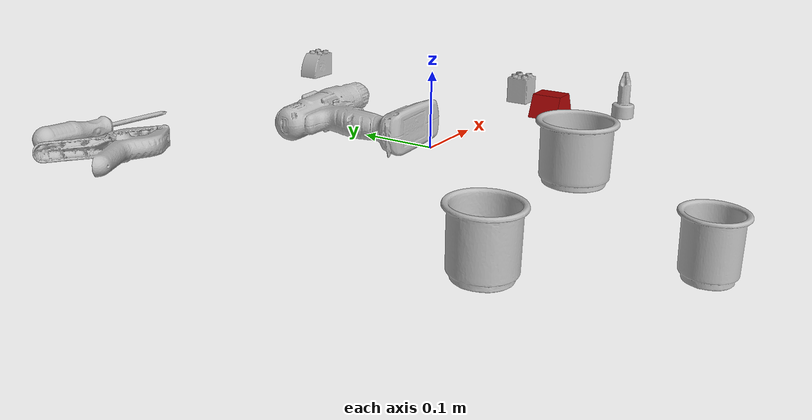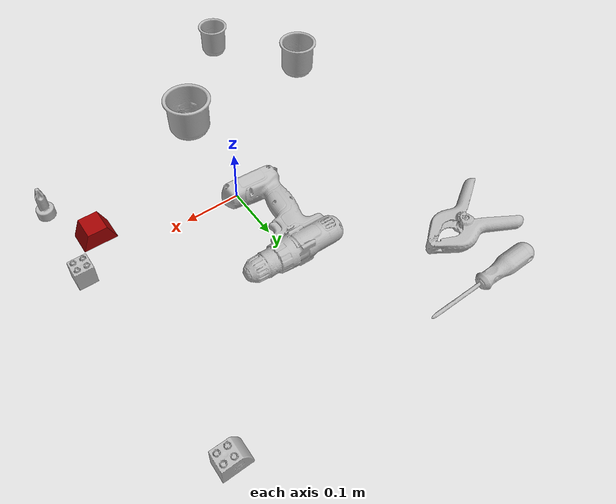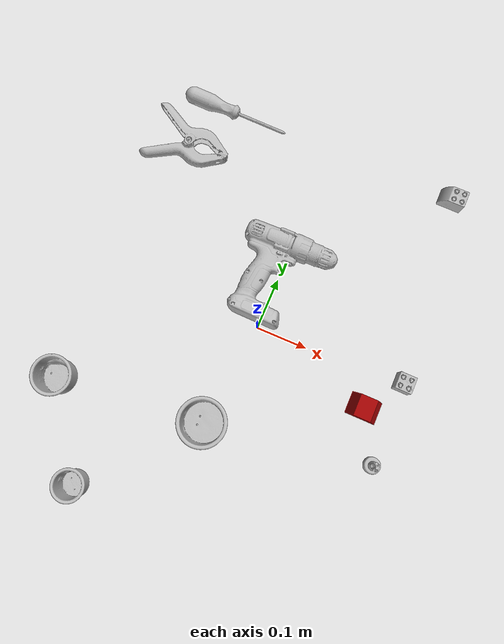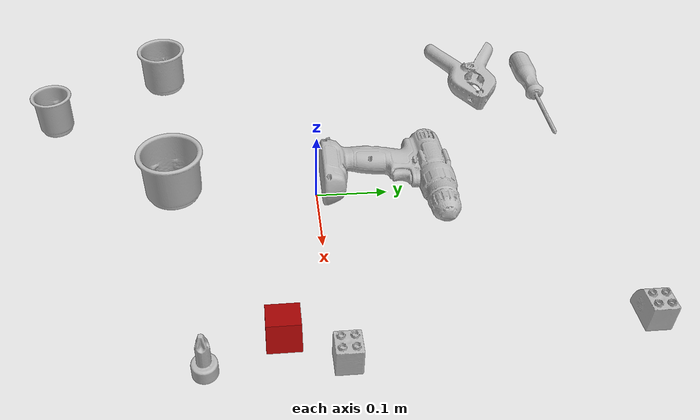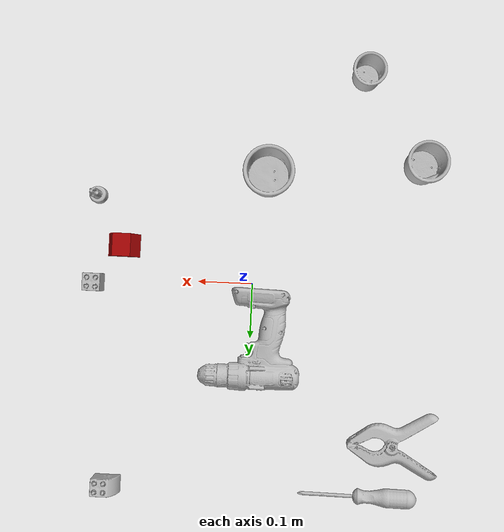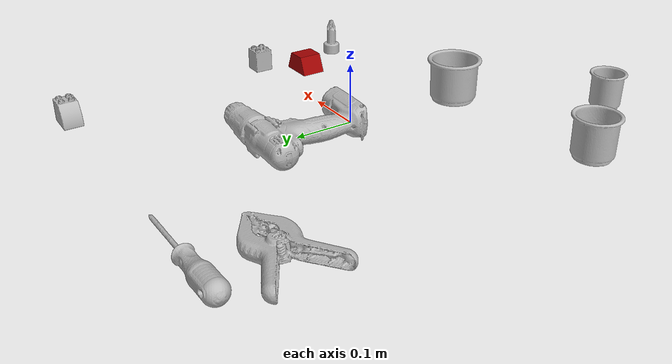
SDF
<?xml version="1.0" ?>
<sdf version="1.4">
  <world name="default">
    <light name="light1" type="point">
      <pose>0 0 1 0 0 0</pose>
      <diffuse>3 3 3 1</diffuse>
      <specular>3 3 3 1</specular>
    </light>
    <light name="light2" type="point">
      <pose>0 0.5 2 0 0 0</pose>
      <diffuse>1 1 1 1</diffuse>
      <specular>1 1 1 1</specular>
    </light>
    <light name="light3" type="point">
      <pose>0 0.5 2 0 0 0</pose>
      <diffuse>3 3 3 1</diffuse>
      <specular>3 3 3 1</specular>
    </light>
    <scene>
      <ambient>0.7 0.7 0.7</ambient>
    </scene>
    <model name="cup1">
      <link name="link_cup1">
        <collision name="default">
          <geometry>
            <mesh>
              <uri>model://b_cups/collision_meshes/collision.obj</uri>
              <scale>1.0 1.0 1.0</scale>
            </mesh>
          </geometry>
          <surface>
            <friction>
              <ode>
                <mu>0.5</mu>
                <mu2>0.5</mu2>
              </ode>
            </friction>
          </surface>
        </collision>
        <visual name="default">
          <geometry>
            <mesh>
              <uri>model://b_cups/visual_meshes/visual.dae</uri>
              <scale>1.0 1.0 1.0</scale>
            </mesh>
          </geometry>
        </visual>
        <inertial>
          <mass>0.048613063991069794</mass>
          <pose>0.0005182003951631486 0.0018058597343042493 -0.0013381808530539274 0.11356326710502956 0.03872484102688303 -0.34569225342860055</pose>
          <inertia>
            <ixx>3.1820662e-05</ixx>
            <iyy>3.121653e-05</iyy>
            <izz>2.6776484e-05</izz>
            <ixy>0</ixy>
            <ixz>0</ixz>
            <iyz>0</iyz>
          </inertia>
        </inertial>
      </link>
      <pose>-0.1900605410337448 -0.3897421360015869 0.03199607878923416 -0.007629473704004821 -0.003829781777238735 2.05153845940119e-05</pose>
    </model>
    <model name="cup2">
      <link name="link_cup2">
        <collision name="default">
          <geometry>
            <mesh>
              <uri>model://e_cups/collision_meshes/collision.obj</uri>
              <scale>1.0 1.0 1.0</scale>
            </mesh>
          </geometry>
          <surface>
            <friction>
              <ode>
                <mu>0.5</mu>
                <mu2>0.5</mu2>
              </ode>
            </friction>
          </surface>
        </collision>
        <visual name="default">
          <geometry>
            <mesh>
              <uri>model://e_cups/visual_meshes/visual.dae</uri>
              <scale>1.0 1.0 1.0</scale>
            </mesh>
          </geometry>
        </visual>
        <inertial>
          <mass>0.07592208683490753</mass>
          <pose>0.0011355738388374448 0.002879784908145666 -0.003882972290739417 0.695241209711482 0.0876783799590152 -0.5235234031188288</pose>
          <inertia>
            <ixx>6.6944274e-05</ixx>
            <iyy>6.996636e-05</iyy>
            <izz>6.400647e-05</izz>
            <ixy>0</ixy>
            <ixz>0</ixz>
            <iyz>0</iyz>
          </inertia>
        </inertial>
      </link>
      <pose>-0.3000028133392334 -0.22992539405822754 0.035599932074546814 5.307791771478936e-05 -6.702543783104974e-05 5.532894701503659e-07</pose>
    </model>
    <model name="cup3">
      <link name="link_cup3">
        <collision name="default">
          <geometry>
            <mesh>
              <uri>model://h_cups/collision_meshes/collision.obj</uri>
              <scale>1.0 1.0 1.0</scale>
            </mesh>
          </geometry>
          <surface>
            <friction>
              <ode>
                <mu>0.5</mu>
                <mu2>0.5</mu2>
              </ode>
            </friction>
          </surface>
        </collision>
        <visual name="default">
          <geometry>
            <mesh>
              <uri>model://h_cups/visual_meshes/visual.dae</uri>
              <scale>1.0 1.0 1.0</scale>
            </mesh>
          </geometry>
        </visual>
        <inertial>
          <mass>0.07054857164621353</mass>
          <pose>-2.7030857381760143e-05 0.0002301865170011297 -0.0018405391601845622 -0.024362378998248252 0.0654525662963329 0.12884761756284485</pose>
          <inertia>
            <ixx>9.1110225e-05</ixx>
            <iyy>9.002296e-05</iyy>
            <izz>9.5549614e-05</izz>
            <ixy>0</ixy>
            <ixz>0</ixz>
            <iyz>0</iyz>
          </inertia>
        </inertial>
      </link>
      <pose>-0.02006101794540882 -0.20000049471855164 0.0377579890191555 -1.536682269539375e-08 2.8754584376761153e-08 -1.490116141478096e-08</pose>
    </model>
    <model name="toy1">
      <link name="link_toy1">
        <collision name="default">
          <geometry>
            <mesh>
              <uri>model://f_lego_duplo/collision_meshes/collision.obj</uri>
              <scale>1.0 1.0 1.0</scale>
            </mesh>
          </geometry>
          <surface>
            <friction>
              <ode>
                <mu>0.5</mu>
                <mu2>0.5</mu2>
              </ode>
            </friction>
          </surface>
        </collision>
        <visual name="default">
          <geometry>
            <mesh>
              <uri>model://f_lego_duplo/visual_meshes/visual.dae</uri>
              <scale>1.0 1.0 1.0</scale>
            </mesh>
          </geometry>
        </visual>
        <inertial>
          <mass>0.027637142688035965</mass>
          <pose>2.3694037736277096e-05 0.0001339315203949809 0.0018837873358279467 0.029838580482088747 -0.014425059949813135 -0.6756637855802661</pose>
          <inertia>
            <ixx>5.8398805e-06</ixx>
            <iyy>5.8919077e-06</iyy>
            <izz>5.069264e-06</izz>
            <ixy>0</ixy>
            <ixz>0</ixz>
            <iyz>0</iyz>
          </inertia>
        </inertial>
      </link>
      <pose>0.28998202085494995 0.009938557632267475 0.021871007978916168 -1.7432386332052465e-07 -8.834184826941258e-07 -0.0006771844055611552</pose>
    </model>
    <model name="toy2">
      <link name="link_toy2">
        <collision name="default">
          <geometry>
            <mesh>
              <uri>model://d_toy_airplane/collision_meshes/collision.obj</uri>
              <scale>1.0 1.0 1.0</scale>
            </mesh>
          </geometry>
          <surface>
            <friction>
              <ode>
                <mu>0.5</mu>
                <mu2>0.5</mu2>
              </ode>
            </friction>
          </surface>
        </collision>
        <visual name="default">
          <geometry>
            <mesh>
              <uri>model://d_toy_airplane/visual_meshes/visual.dae</uri>
              <scale>1.0 1.0 1.0</scale>
            </mesh>
          </geometry>
        </visual>
        <inertial>
          <mass>0.017859498038887978</mass>
          <pose>9.410335042048246e-05 -5.809318827232346e-05 -0.011728094890713692 0.0002667298520076861 0.004679004392369758 0.5194091511239993</pose>
          <inertia>
            <ixx>5.35393e-06</ixx>
            <iyy>5.3579683e-06</iyy>
            <izz>1.6163864e-06</izz>
            <ixy>0</ixy>
            <ixz>0</ixz>
            <iyz>0</iyz>
          </inertia>
        </inertial>
      </link>
      <pose>0.29000619053840637 -0.14996907114982605 0.03333890438079834 3.250217693043365e-05 -0.00011524646781515421 7.95515138358653e-07</pose>
    </model>
    <model name="toy3">
      <link name="link_toy3">
        <collision name="default">
          <geometry>
            <mesh>
              <uri>model://prism/collision_meshes/collision.obj</uri>
              <scale>0.5 0.5 0.5</scale>
            </mesh>
          </geometry>
          <surface>
            <friction>
              <ode>
                <mu>0.5</mu>
                <mu2>0.5</mu2>
              </ode>
            </friction>
          </surface>
        </collision>
        <visual name="default">
          <geometry>
            <mesh>
              <uri>model://prism/visual_meshes/visual.dae</uri>
              <scale>0.5 0.5 0.5</scale>
            </mesh>
          </geometry>
        </visual>
        <inertial>
          <mass>0.04761093109846115</mass>
          <pose>-4.92679828312248e-05 -2.480786349678965e-07 -0.001693455153144896 0.0 0.006559181231804993 0.0</pose>
          <inertia>
            <ixx>1.074207e-05</ixx>
            <iyy>1.2981929e-05</iyy>
            <izz>1.590131e-05</izz>
            <ixy>0</ixy>
            <ixz>0</ixz>
            <iyz>0</iyz>
          </inertia>
        </inertial>
      </link>
      <pose>0.23999997973442078 -0.05999976396560669 0.016084996983408928 -1.9962813942922657e-08 -3.259627060283114e-09 1.954505109195222e-07</pose>
    </model>
    <model name="toy4">
      <link name="link_toy4">
        <collision name="default">
          <geometry>
            <mesh>
              <uri>model://d_lego_duplo/collision_meshes/collision.obj</uri>
              <scale>1.0 1.0 1.0</scale>
            </mesh>
          </geometry>
          <surface>
            <friction>
              <ode>
                <mu>0.5</mu>
                <mu2>0.5</mu2>
              </ode>
            </friction>
          </surface>
        </collision>
        <visual name="default">
          <geometry>
            <mesh>
              <uri>model://d_lego_duplo/visual_meshes/visual.dae</uri>
              <scale>1.0 1.0 1.0</scale>
            </mesh>
          </geometry>
        </visual>
        <inertial>
          <mass>0.06000049039721489</mass>
          <pose>0.0028305640444159508 0.0001636611996218562 0.000858980929479003 0.08010949527318252 -0.38355210287845315 0.0010297055105996263</pose>
          <inertia>
            <ixx>1.1615211e-05</ixx>
            <iyy>1.6485134e-05</iyy>
            <izz>1.5897598e-05</izz>
            <ixy>0</ixy>
            <ixz>0</ixz>
            <iyz>0</iyz>
          </inertia>
        </inertial>
      </link>
      <pose>0.24997547268867493 0.37989550828933716 0.02173999324440956 -1.629812137842173e-09 -8.032657686468485e-09 -5.895271897250861e-07</pose>
    </model>
    <model name="hardware1">
      <link name="link_hardware1">
        <collision name="default">
          <geometry>
            <mesh>
              <uri>model://phillips_screwdriver/collision_meshes/collision.obj</uri>
              <scale>1.0 1.0 1.0</scale>
            </mesh>
          </geometry>
          <surface>
            <friction>
              <ode>
                <mu>0.5</mu>
                <mu2>0.5</mu2>
              </ode>
            </friction>
          </surface>
        </collision>
        <visual name="default">
          <geometry>
            <mesh>
              <uri>model://phillips_screwdriver/visual_meshes/visual.dae</uri>
              <scale>1.0 1.0 1.0</scale>
            </mesh>
          </geometry>
        </visual>
        <inertial>
          <mass>0.11704345047473907</mass>
          <pose>-0.04777182638645172 0.0010362302418798208 -0.0004555549821816385 -0.1571668982332543 0.0058509943133797405 -0.002156735283865719</pose>
          <inertia>
            <ixx>1.3751404e-05</ixx>
            <iyy>0.00017241857</iyy>
            <izz>0.0001725651</izz>
            <ixy>0</ixy>
            <ixz>0</ixz>
            <iyz>0</iyz>
          </inertia>
        </inertial>
      </link>
      <pose>-0.21218156814575195 0.37796327471733093 0.015409649349749088 0.06560509345185224 0.03756753977845019 0.001716493583890908</pose>
    </model>
    <model name="hardware2">
      <link name="link_hardware2">
        <collision name="default">
          <geometry>
            <mesh>
              <uri>model://large_clamp/collision_meshes/collision.obj</uri>
              <scale>1.0 1.0 1.0</scale>
            </mesh>
          </geometry>
          <surface>
            <friction>
              <ode>
                <mu>0.5</mu>
                <mu2>0.5</mu2>
              </ode>
            </friction>
          </surface>
        </collision>
        <visual name="default">
          <geometry>
            <mesh>
              <uri>model://large_clamp/visual_meshes/visual.dae</uri>
              <scale>1.0 1.0 1.0</scale>
            </mesh>
          </geometry>
        </visual>
        <inertial>
          <mass>0.18953841924667358</mass>
          <pose>0.00636935792863369 0.0003585682134144008 -0.00018398056272417307 -0.002133075536327147 0.009671586607470332 0.026633167384546762</pose>
          <inertia>
            <ixx>0.00016722476</ixx>
            <iyy>0.0003175689</iyy>
            <izz>0.00045940367</izz>
            <ixy>0</ixy>
            <ixz>0</ixz>
            <iyz>0</iyz>
          </inertia>
        </inertial>
      </link>
      <pose>-0.2683679163455963 0.2817768454551697 0.018503980711102486 -0.012136542998827316 0.046945774534914116 -0.0008543120547288069</pose>
    </model>
    <model name="hardware3">
      <link name="link_hardware3">
        <collision name="default">
          <geometry>
            <mesh>
              <uri>model://power_drill/collision_meshes/collision.obj</uri>
              <scale>1.0 1.0 1.0</scale>
            </mesh>
          </geometry>
          <surface>
            <friction>
              <ode>
                <mu>0.5</mu>
                <mu2>0.5</mu2>
              </ode>
            </friction>
          </surface>
        </collision>
        <visual name="default">
          <geometry>
            <mesh>
              <uri>model://power_drill/visual_meshes/visual.dae</uri>
              <scale>1.0 1.0 1.0</scale>
            </mesh>
          </geometry>
        </visual>
        <inertial>
          <mass>0.5207164287567139</mass>
          <pose>-0.014780543744564056 0.014369428157806396 0.0012414171360433102 0.004609162650930739 0.004073022346756156 -0.183626968168983</pose>
          <inertia>
            <ixx>0.0021219437</ixx>
            <iyy>0.00083487434</iyy>
            <izz>0.002802402</izz>
            <ixy>0</ixy>
            <ixz>0</ixz>
            <iyz>0</iyz>
          </inertia>
        </inertial>
      </link>
      <pose>-0.0009717764332890511 0.10043816268444061 0.027312450110912323 -0.030306004808909666 -0.047252851814897086 3.336618100664001e-05</pose>
    </model>
  </world>
</sdf>
